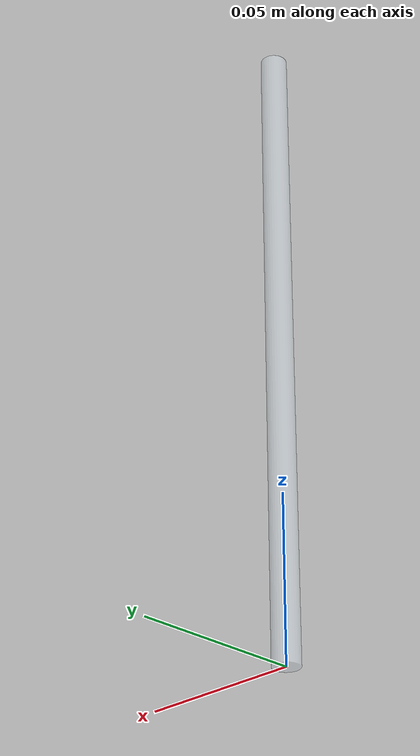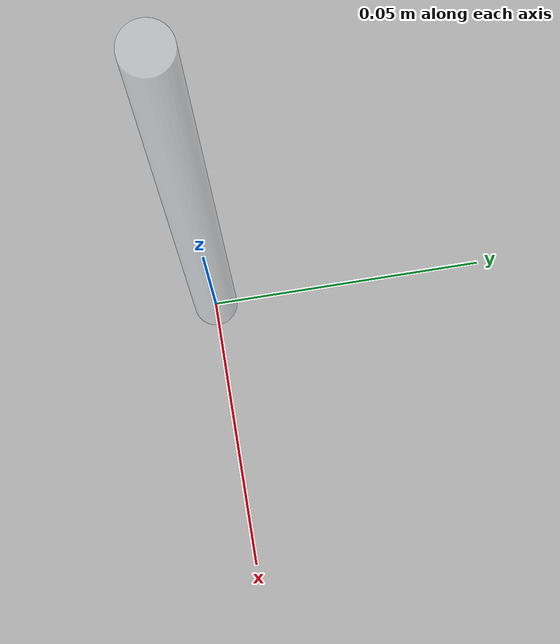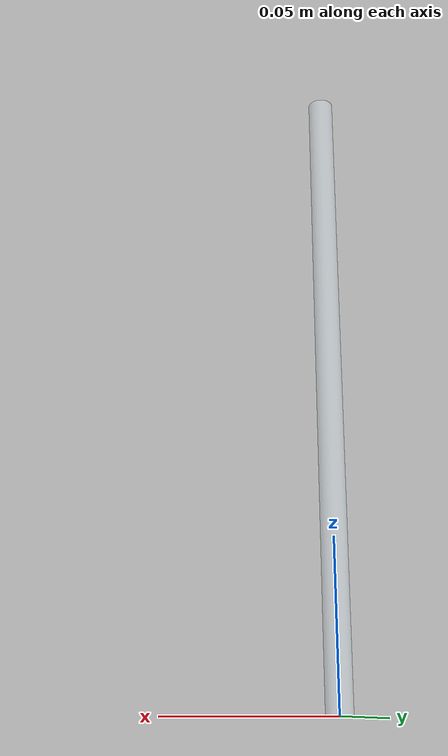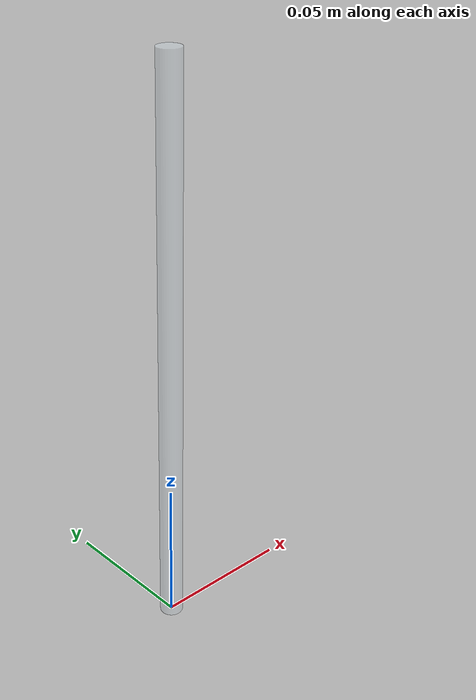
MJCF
<?xml version="1.0" ?>
<mujoco model="glass_stirring_rod">
  <compiler boundmass="0.015" boundinertia="1e-05" angle="radian"/>
  <default>
    <default class="visual">
      <geom group="2" type="mesh" contype="0" conaffinity="0" density="50"/>
    </default>
    <default class="collision">
      <geom group="3" type="mesh" density="50" friction="1 1 0.1" solimp="0.99 0.99 0.001" solref="0.0001 0.0001"/>
    </default>
    <default class="grasppoint">
      <site type="sphere" size="0.005" group="4" rgba="0 0 1 1"/>
    </default>
  </default>
  <asset>
    <material name="glass_stirring_rod" specular="0.9" shininess="0.9" rgba="0.85 0.92 0.97 0.3"/>
    <mesh file="glass_stirring_rod.obj" scale="1 1 1"/>
  </asset>
  <worldbody>
    <body name="glass_stirring_rod">
      <inertial pos="0 0 0.1" mass="0.005" diaginertia="0.00003 0.00003 0.00000008"/>
      <geom material="glass_stirring_rod" mesh="glass_stirring_rod" class="visual"/>
      <geom type="box" size="0.004 0.004 0.1" pos="0 0 0.1" class="collision"/>
      <site class="grasppoint" pos="0.0000 0.0000 0.1700"/>
      <site name="top_site" pos="0 0 0.2" size="0.01" rgba="1 0 0 0"/>
      <site name="bottom_site" pos="0 0 0.0" size="0.01" rgba="0 1 0 0"/>
    </body>
  </worldbody>
</mujoco>
